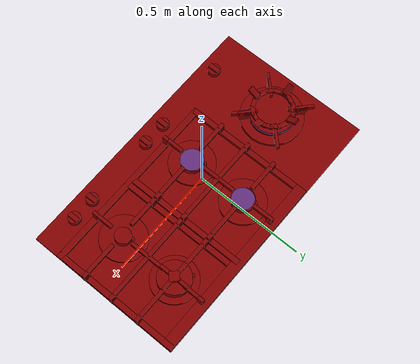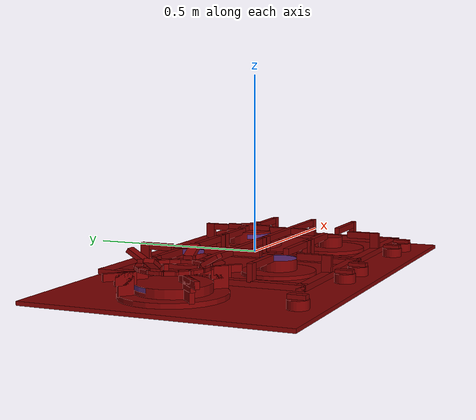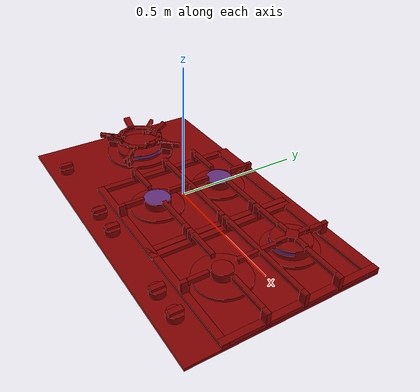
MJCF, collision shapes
<?xml version='1.0' encoding='UTF-8'?>
<mujoco model="model">
  <compiler angle="radian"/>
  <asset>
    <mesh file="visuals/knob_front_center.obj" name="knob_front_center_vis"/>
    <mesh file="visuals/knob_front_left.obj" name="knob_front_left_vis"/>
    <mesh file="visuals/knob_front_right.obj" name="knob_front_right_vis"/>
    <mesh file="visuals/knob_rear_center.obj" name="knob_rear_center_vis"/>
    <mesh file="visuals/knob_rear_right.obj" name="knob_rear_right_vis"/>
    <mesh file="visuals/Body001.obj" name="Body001_vis"/>
    <mesh file="visuals/Body002.obj" name="Body002_vis"/>
    <texture file="visuals/T_BC001.png" name="Body001_material" type="2d"/>
    <material name="Body001_material" rgba="1 1 1 1.0" texture="Body001_material" shininess="0.4472135901451111" specular="3"/>
    <texture file="visuals/T_BC001.png" name="knob_front_center_material" type="2d"/>
    <material name="knob_front_center_material" rgba="1 1 1 1.0" texture="knob_front_center_material" shininess="0.4472135901451111" specular="1"/>
    <texture file="visuals/T_BC001.png" name="knob_front_left_material" type="2d"/>
    <material name="knob_front_left_material" rgba="1 1 1 1.0" texture="knob_front_left_material" shininess="0.4472135901451111" specular="1"/>
    <texture file="visuals/T_BC001.png" name="knob_front_right_material" type="2d"/>
    <material name="knob_front_right_material" rgba="1 1 1 1.0" texture="knob_front_right_material" shininess="0.4472135901451111" specular="1"/>
    <texture file="visuals/T_BC001.png" name="knob_rear_center_material" type="2d"/>
    <material name="knob_rear_center_material" rgba="1 1 1 1.0" texture="knob_rear_center_material" shininess="0.4472135901451111" specular="1"/>
    <texture file="visuals/T_BC001.png" name="knob_rear_right_material" type="2d"/>
    <material name="knob_rear_right_material" rgba="1 1 1 1.0" texture="knob_rear_right_material" shininess="0.4472135901451111" specular="1"/>
    <texture file="visuals/T_BC001.png" name="Body002_material" type="2d"/>
    <material name="Body002_material" rgba="1 1 1 1.0" texture="Body002_material" shininess="0.4472135901451111" specular="8"/>
  </asset>
  <default>
    <default class="visual">
      <geom conaffinity="0" contype="0" group="1" type="mesh"/>
    </default>
    <default class="collision">
      <geom group="0" rgba="0.5 0 0 0.5"/>
    </default>
    <default class="spawn">
      <geom group="0" rgba="1 1 1 0.5" contype="0" conaffinity="0"/>
      <site group="0" rgba="1 1 1 0.5"/>
    </default>
    <default class="region">
      <geom group="1" conaffinity="0" contype="0" rgba="0 1 0 0"/>
    </default>
  </default>
  <worldbody>
    <body>
      <body name="object">
        <site type="cylinder" rgba="0.3 0.4 1 0.5" size="0.07286595553159714 0.006548984907567501" pos="0.3976626992225647 0.18694806098937988 -0.013720323331654072" name="burner_on_rear_right"/>
        <site type="cylinder" rgba="0.3 0.4 1 0.5" size="0.05037660896778107 0.007504538167268038" pos="-0.0423559844493866 0.1877288818359375 -0.013685558922588825" name="burner_on_rear_center"/>
        <site type="cylinder" rgba="0.3 0.4 1 0.5" size="0.09995614737272263 0.00620750617235899" pos="-0.4361136555671692 0.03471238911151886 -0.019563807174563408" name="burner_on_front_left"/>
        <site type="cylinder" rgba="0.3 0.4 1 0.5" size="0.03598540648818016 0.006876813247799873" pos="0.396560937166214 -0.08879250288009644 -0.01334063895046711" name="burner_on_front_right"/>
        <site type="cylinder" rgba="0.3 0.4 1 0.5" size="0.05138256400823593 0.007969224825501442" pos="-0.042687781155109406 -0.0889759212732315 -0.013876210898160934" name="burner_on_front_center"/>
        <geom mesh="Body001_vis" type="mesh" solimp="0.998 0.998 0.001" solref="0.001 1" density="100" friction="0.95 0.3 0.1" class="visual" material="Body001_material"/>
        <geom class="collision" type="box" pos="-0.0010509236017242074 -0.0004410073161125183 -0.05602063611149788" size="0.6303008198738098 0.36655372381210327 0.005506801884621382" quat="1.0 0.0 0.0 0.0"/>
        <body name="knob_front_center">
          <joint axis="0.0 0.0 1.0" pos="-0.09906840324401855 -0.3011915683746338 -0.03230369836091995" limited="true" name="knob_front_center_joint" range="0.0 3.141592653589793" type="hinge" damping="0.05" armature="0.001"/>
          <geom mesh="knob_front_center_vis" type="mesh" solimp="0.998 0.998 0.001" solref="0.001 1" density="100" friction="0.95 0.3 0.1" class="visual" material="knob_front_center_material"/>
          <geom class="collision" type="cylinder" pos="-0.0989885926246643 -0.3011915683746338 -0.03566398099064827" size="0.028106248006224632 0.012377618812024593" quat="1.0 0.0 0.0 0.0"/>
          <geom class="collision" type="box" pos="-0.0987110510468483 -0.30037012696266174 -0.024532392621040344" size="0.010732141323387623 0.024371599778532982 0.010732141323387623" quat="1.0 0.0 0.0 0.0"/>
        </body>
        <body name="knob_front_left">
          <joint axis="0.0 0.0 1.0" pos="-0.4476041793823242 -0.3011915683746338 -0.03230369836091995" limited="true" name="knob_front_left_joint" range="0.0 3.141592653589793" type="hinge" damping="0.05" armature="0.001"/>
          <geom mesh="knob_front_left_vis" type="mesh" solimp="0.998 0.998 0.001" solref="0.001 1" density="100" friction="0.95 0.3 0.1" class="visual" material="knob_front_left_material"/>
          <geom class="collision" type="cylinder" pos="-0.447603702545166 -0.3011915683746338 -0.03754332661628723" size="0.028106248006224632 0.011979950591921806" quat="1.0 0.0 0.0 0.0"/>
          <geom class="collision" type="box" pos="-0.447706401348114 -0.30037012696266174 -0.024532392621040344" size="0.010732141323387623 0.02437158115208149 0.010732141323387623" quat="1.0 0.0 0.0 0.0"/>
        </body>
        <body name="knob_front_right">
          <joint axis="0.0 0.0 1.0" pos="0.4650413393974304 -0.3011915683746338 -0.03230369836091995" limited="true" name="knob_front_right_joint" range="0.0 3.141592653589793" type="hinge" damping="0.05" armature="0.001"/>
          <geom mesh="knob_front_right_vis" type="mesh" solimp="0.998 0.998 0.001" solref="0.001 1" density="100" friction="0.95 0.3 0.1" class="visual" material="knob_front_right_material"/>
          <geom class="collision" type="cylinder" pos="0.46374017000198364 -0.3011915683746338 -0.03566398099064827" size="0.028106248006224632 0.012377618812024593" quat="1.0 0.0 0.0 0.0"/>
          <geom class="collision" type="box" pos="0.4653386175632477 -0.30037012696266174 -0.024532392621040344" size="0.010732141323387623 0.024371657520532608 0.010732141323387623" quat="1.0 0.0 0.0 0.0"/>
        </body>
        <body name="knob_rear_center">
          <joint axis="0.0 0.0 1.0" pos="0.014635343104600906 -0.3011915683746338 -0.03230369836091995" limited="true" name="knob_rear_center_joint" range="0.0 3.141592653589793" type="hinge" damping="0.05" armature="0.001"/>
          <geom mesh="knob_rear_center_vis" type="mesh" solimp="0.998 0.998 0.001" solref="0.001 1" density="100" friction="0.95 0.3 0.1" class="visual" material="knob_rear_center_material"/>
          <geom class="collision" type="cylinder" pos="0.014269128441810608 -0.3011915683746338 -0.03566398099064827" size="0.028106248006224632 0.012377618812024593" quat="1.0 0.0 0.0 0.0"/>
          <geom class="collision" type="box" pos="0.014997273683547974 -0.30037012696266174 -0.024532392621040344" size="0.010732141323387623 0.024371620267629623 0.010732141323387623" quat="1.0 0.0 0.0 0.0"/>
        </body>
        <body name="knob_rear_right">
          <joint axis="0.0 0.0 1.0" pos="0.3535720109939575 -0.3011915683746338 -0.03230369836091995" limited="true" name="knob_rear_right_joint" range="0.0 3.141592653589793" type="hinge" damping="0.05" armature="0.001"/>
          <geom mesh="knob_rear_right_vis" type="mesh" solimp="0.998 0.998 0.001" solref="0.001 1" density="100" friction="0.95 0.3 0.1" class="visual" material="knob_rear_right_material"/>
          <geom class="collision" type="cylinder" pos="0.3542793393135071 -0.3011915683746338 -0.03566398099064827" size="0.028106248006224632 0.012377618812024593" quat="1.0 0.0 0.0 0.0"/>
          <geom class="collision" type="box" pos="0.3540778160095215 -0.30037012696266174 -0.024532392621040344" size="0.010732141323387623 0.024371638894081116 0.010732141323387623" quat="1.0 0.0 0.0 0.0"/>
        </body>
        <body name="Body002">
          <geom mesh="Body002_vis" type="mesh" solimp="0.998 0.998 0.001" solref="0.001 1" density="100" friction="0.95 0.3 0.1" class="visual" material="Body002_material"/>
          <geom class="collision" type="box" pos="0.19031713902950287 -0.23322072625160217 -0.04272088408470154" size="0.4400772750377655 0.013268081471323967 0.008355222642421722" quat="1.0 0.0 0.0 0.0"/>
          <geom class="collision" type="box" pos="-0.23705027997493744 0.05929756537079811 -0.04272088408470154" size="0.01270985696464777 0.3057863712310791 0.008355222642421722" quat="1.0 0.0 0.0 0.0"/>
          <geom class="collision" type="box" pos="0.19031713902950287 0.33987000584602356 -0.04272088408470154" size="0.4400772750377655 0.024021996185183525 0.008355222642421722" quat="1.0 0.0 0.0 0.0"/>
          <geom class="collision" type="box" pos="0.616409182548523 0.05929756909608841 -0.04272088408470154" size="0.01270985696464777 0.3057863712310791 0.008355222642421722" quat="1.0 0.0 0.0 0.0"/>
          <geom class="collision" type="box" pos="0.1769605278968811 0.04854365065693855 -0.04272088408470154" size="0.01270985696464777 0.29503247141838074 0.008355222642421722" quat="1.0 0.0 0.0 0.0"/>
          <geom class="collision" type="box" pos="0.20515483617782593 0.04854365065693855 -0.04272088408470154" size="0.01270985696464777 0.29503247141838074 0.008355222642421722" quat="1.0 0.0 0.0 0.0"/>
          <geom class="collision" type="cylinder" pos="-0.04338785633444786 -0.08959128707647324 -0.04437381774187088" size="0.10432770103216171 0.00552700599655509" quat="1.0 0.0 0.0 0.0"/>
          <geom class="collision" type="cylinder" pos="-0.04253922402858734 -0.08840319514274597 -0.022003553807735443" size="0.05208172649145126 0.015430700965225697" quat="1.0 0.0 0.0 0.0"/>
          <geom class="collision" type="box" pos="-0.06826606392860413 -0.039187077432870865 -0.027044760063290596" size="0.005426999181509018 0.005426998715847731 0.012309755198657513" quat="1.0 0.0 0.0 0.0"/>
          <geom class="collision" type="box" pos="-0.06826606392860413 0.23836781084537506 -0.027044760063290596" size="0.005427008029073477 0.0054270075634121895 0.01230977289378643" quat="1.0 0.0 0.0 0.0"/>
          <geom class="collision" type="cylinder" pos="-0.04253922402858734 0.18915168941020966 -0.022003553807735443" size="0.05208172649145126 0.015430700965225697" quat="1.0 0.0 0.0 0.0"/>
          <geom class="collision" type="cylinder" pos="-0.04338785633444786 0.187963604927063 -0.04437381774187088" size="0.10432770103216171 0.00552700599655509" quat="1.0 0.0 0.0 0.0"/>
          <geom class="collision" type="cylinder" pos="0.3969215750694275 0.187963604927063 -0.04437381774187088" size="0.10432770103216171 0.00552700599655509" quat="1.0 0.0 0.0 0.0"/>
          <geom class="collision" type="cylinder" pos="0.3977702260017395 0.18915167450904846 -0.022003553807735443" size="0.0737522542476654 0.02185121551156044" quat="1.0 0.0 0.0 0.0"/>
          <geom class="collision" type="box" pos="0.33847248554229736 0.23865200579166412 -0.027044760063290596" size="0.005427016876637936 0.005427016410976648 0.012309790588915348" quat="1.0 0.0 0.0 0.0"/>
          <geom class="collision" type="cylinder" pos="0.3967929780483246 -0.08908967673778534 -0.021894652396440506" size="0.036543622612953186 0.016257889568805695" quat="1.0 0.0 0.0 0.0"/>
          <geom class="collision" type="cylinder" pos="0.3969215750694275 -0.08843904733657837 -0.04437381774187088" size="0.10432770103216171 0.00552700599655509" quat="1.0 0.0 0.0 0.0"/>
          <geom class="collision" type="box" pos="0.3788573145866394 -0.051210273057222366 -0.027044760063290596" size="0.0054270257242023945 0.005427025258541107 0.012309808284044266" quat="1.0 0.0 0.0 0.0"/>
          <geom class="collision" type="box" pos="-0.23605410754680634 -0.08986159414052963 -0.012993106618523598" size="0.013706033118069172 0.007810263428837061 0.024774696677923203" quat="1.0 0.0 0.0 0.0"/>
          <geom class="collision" type="box" pos="-0.1612846404314041 -0.08986159414052963 0.0023884030524641275" size="0.061484191566705704 0.007810263428837061 0.009393187239766121" quat="1.0 0.0 0.0 0.0"/>
          <geom class="collision" type="box" pos="-0.0426788330078125 0.05086729675531387 0.002388403285294771" size="0.0078102825209498405 0.08601213991641998 0.009393187239766121" quat="1.0 0.0 0.0 0.0"/>
          <geom class="collision" type="box" pos="-0.23605410754680634 0.05305667966604233 -0.012993106618523598" size="0.013706033118069172 0.007810263428837061 0.024774696677923203" quat="1.0 0.0 0.0 0.0"/>
          <geom class="collision" type="box" pos="-0.23605410754680634 0.18989333510398865 -0.012993106618523598" size="0.013706033118069172 0.007810263428837061 0.024774696677923203" quat="1.0 0.0 0.0 0.0"/>
          <geom class="collision" type="box" pos="-0.15952490270137787 0.18989333510398865 0.0023884030524641275" size="0.06324392557144165 0.007810263428837061 0.009393187239766121" quat="1.0 0.0 0.0 0.0"/>
          <geom class="collision" type="box" pos="-0.028600990772247314 0.05305667966604233 0.002388403285294771" size="0.194167822599411 0.007810263428837061 0.009393187239766121" quat="1.0 0.0 0.0 0.0"/>
          <geom class="collision" type="box" pos="0.08711609244346619 0.18989333510398865 0.0023884030524641275" size="0.07573800534009933 0.007810263428837061 0.009393187239766121" quat="1.0 0.0 0.0 0.0"/>
          <geom class="collision" type="box" pos="0.17613938450813293 0.18989333510398865 -0.012993106618523598" size="0.013706033118069172 0.007810263428837061 0.024774696677923203" quat="1.0 0.0 0.0 0.0"/>
          <geom class="collision" type="box" pos="0.17613938450813293 -0.08961156755685806 -0.012993106618523598" size="0.013706033118069172 0.007810263428837061 0.024774696677923203" quat="1.0 0.0 0.0 0.0"/>
          <geom class="collision" type="box" pos="0.08711609244346619 -0.08961156755685806 0.0023884030524641275" size="0.07573800534009933 0.007810263428837061 0.009393187239766121" quat="1.0 0.0 0.0 0.0"/>
          <geom class="collision" type="box" pos="0.17613938450813293 0.052926622331142426 -0.012993106618523598" size="0.013706033118069172 0.007810263428837061 0.024774696677923203" quat="1.0 0.0 0.0 0.0"/>
          <geom class="collision" type="box" pos="-0.04257605969905853 -0.18351224064826965 0.0023884030524641275" size="0.007810270879417658 0.03859221190214157 0.009393187239766121" quat="1.0 0.0 0.0 0.0"/>
          <geom class="collision" type="box" pos="-0.04273121803998947 -0.23147086799144745 -0.012993106618523598" size="0.007810266222804785 0.013706034980714321 0.024774696677923203" quat="1.0 0.0 0.0 0.0"/>
          <geom class="collision" type="box" pos="-0.04273121803998947 0.3285892903804779 -0.012993106618523598" size="0.007810266222804785 0.013706034980714321 0.024774696677923203" quat="1.0 0.0 0.0 0.0"/>
          <geom class="collision" type="box" pos="-0.04257605969905853 0.2806306779384613 0.0023884030524641275" size="0.007810270879417658 0.03859221190214157 0.009393187239766121" quat="1.0 0.0 0.0 0.0"/>
          <geom class="collision" type="box" pos="0.4009065628051758 0.2806306779384613 0.0023884030524641275" size="0.007810270879417658 0.03859221190214157 0.009393187239766121" quat="1.0 0.0 0.0 0.0"/>
          <geom class="collision" type="box" pos="0.40075138211250305 0.3285892903804779 -0.012993106618523598" size="0.007810266222804785 0.013706034980714321 0.024774696677923203" quat="1.0 0.0 0.0 0.0"/>
          <geom class="collision" type="box" pos="0.40075138211250305 -0.23147086799144745 -0.012993106618523598" size="0.007810266222804785 0.013706034980714321 0.024774696677923203" quat="1.0 0.0 0.0 0.0"/>
          <geom class="collision" type="box" pos="0.4009065628051758 -0.18351224064826965 0.0023884030524641275" size="0.007810270879417658 0.03859221190214157 0.009393187239766121" quat="1.0 0.0 0.0 0.0"/>
          <geom class="collision" type="box" pos="0.619621992111206 0.052926622331142426 -0.012993106618523598" size="0.013706033118069172 0.007810263428837061 0.024774696677923203" quat="1.0 0.0 0.0 0.0"/>
          <geom class="collision" type="box" pos="0.5305987000465393 -0.08961156755685806 0.0023884030524641275" size="0.07573800534009933 0.007810263428837061 0.009393187239766121" quat="1.0 0.0 0.0 0.0"/>
          <geom class="collision" type="box" pos="0.619621992111206 -0.08961156755685806 -0.012993106618523598" size="0.013706033118069172 0.007810263428837061 0.024774696677923203" quat="1.0 0.0 0.0 0.0"/>
          <geom class="collision" type="box" pos="0.619621992111206 0.18989333510398865 -0.012993106618523598" size="0.013706033118069172 0.007810263428837061 0.024774696677923203" quat="1.0 0.0 0.0 0.0"/>
          <geom class="collision" type="box" pos="0.5305987000465393 0.18989333510398865 0.0023884030524641275" size="0.07573800534009933 0.007810263428837061 0.009393187239766121" quat="1.0 0.0 0.0 0.0"/>
          <geom class="collision" type="box" pos="0.4148816168308258 0.05305667966604233 0.002388403285294771" size="0.194167822599411 0.007810263428837061 0.009393187239766121" quat="1.0 0.0 0.0 0.0"/>
          <geom class="collision" type="box" pos="0.28395769000053406 0.18989333510398865 0.0023884030524641275" size="0.06324392557144165 0.007810263428837061 0.009393187239766121" quat="1.0 0.0 0.0 0.0"/>
          <geom class="collision" type="box" pos="0.20742850005626678 0.18989333510398865 -0.012993106618523598" size="0.013706033118069172 0.007810263428837061 0.024774696677923203" quat="1.0 0.0 0.0 0.0"/>
          <geom class="collision" type="box" pos="0.20742850005626678 0.05305667966604233 -0.012993106618523598" size="0.013706033118069172 0.007810263428837061 0.024774696677923203" quat="1.0 0.0 0.0 0.0"/>
          <geom class="collision" type="box" pos="0.4008037745952606 0.05086729675531387 0.002388403285294771" size="0.0078102825209498405 0.08601213991641998 0.009393187239766121" quat="1.0 0.0 0.0 0.0"/>
          <geom class="collision" type="box" pos="0.2821979522705078 -0.08986159414052963 0.0023884030524641275" size="0.061484191566705704 0.007810263428837061 0.009393187239766121" quat="1.0 0.0 0.0 0.0"/>
          <geom class="collision" type="box" pos="0.20742850005626678 -0.08986159414052963 -0.012993106618523598" size="0.013706033118069172 0.007810263428837061 0.024774696677923203" quat="1.0 0.0 0.0 0.0"/>
          <geom class="collision" type="box" pos="0.3984936773777008 0.18940791487693787 0.008470630273222923" size="0.021225016564130783 0.02158193103969097 0.009393187239766121" quat="0.9252730011940002 0.0 0.0 0.37930184602737427"/>
          <geom class="collision" type="box" pos="0.3984360098838806 0.18989333510398865 0.006241433322429657" size="0.07198488712310791 0.007810263428837061 0.009393187239766121" quat="1.0 0.0 0.0 0.0"/>
          <geom class="collision" type="box" pos="0.3984360098838806 0.18989333510398865 0.006241433322429657" size="0.007841657847166061 0.07198827713727951 0.009393187239766121" quat="1.0 0.0 0.0 0.0"/>
          <geom class="collision" type="cylinder" pos="-0.43706589937210083 0.034202367067337036 -0.04437382146716118" size="0.1417691558599472 0.007510555442422628" quat="1.0 0.0 0.0 0.0"/>
          <geom class="collision" type="cylinder" pos="-0.43685078620910645 0.033560317009687424 -0.03190205246210098" size="0.09960156679153442 0.019611313939094543" quat="1.0 0.0 0.0 0.0"/>
          <geom class="collision" type="box" pos="-0.4368622303009033 -0.05217701941728592 0.025454793125391006" size="0.023361733183264732 0.009217897430062294 0.0049835131503641605" quat="1.0 0.0 0.0 0.0"/>
          <geom class="collision" type="box" pos="-0.3744599223136902 -0.02524673193693161 0.025454793125391006" size="0.023361949250102043 0.009218004532158375 0.004983567167073488" quat="0.918096125125885 0.0 0.0 0.39635783433914185"/>
          <geom class="collision" type="box" pos="-0.3512263298034668 0.037957657128572464 0.025454793125391006" size="0.023361949250102043 0.009218004532158375 0.004983567167073488" quat="0.6886866688728333 0.0 0.0 0.7250590920448303"/>
          <geom class="collision" type="box" pos="-0.37670162320137024 0.09465833753347397 0.025454793125391006" size="0.023361949250102043 0.009218004532158375 0.004983567167073488" quat="0.3790040910243988 0.0 0.0 0.9253950119018555"/>
          <geom class="collision" type="box" pos="-0.4380412995815277 0.11928940564393997 0.025454793125391006" size="0.02348848432302475 0.009544494561851025 0.004983518272638321" quat="1.0 0.0 0.0 0.0"/>
          <geom class="collision" type="box" pos="-0.49446970224380493 0.09705013781785965 0.025454793125391006" size="0.023361949250102043 0.009218004532158375 0.004983567167073488" quat="0.3602597415447235 0.0 -0.0 -0.932852029800415"/>
          <geom class="collision" type="box" pos="-0.5225727558135986 0.035185277462005615 0.025454793125391006" size="0.023361949250102043 0.009218004532158375 0.004983567167073488" quat="0.7004214525222778 0.0 -0.0 -0.7137295007705688"/>
          <geom class="collision" type="box" pos="-0.4989605247974396 -0.025543607771396637 0.025454793125391006" size="0.023361949250102043 0.009218004532158375 0.004983567167073488" quat="0.9190910458564758 0.0 -0.0 -0.39404526352882385"/>
          <geom class="collision" type="box" pos="-0.47276923060417175 -0.044290557503700256 0.025454793125391006" size="0.023361949250102043 0.009218004532158375 0.004983567167073488" quat="0.9767475724220276 0.0 -0.0 -0.2143925279378891"/>
          <geom class="collision" type="box" pos="-0.5171234011650085 0.003440454602241516 0.025454793125391006" size="0.023361949250102043 0.009218004532158375 0.004983567167073488" quat="0.8220183849334717 0.0 -0.0 -0.569460928440094"/>
          <geom class="collision" type="box" pos="-0.5138306617736816 0.07130943238735199 0.025454793125391006" size="0.023361949250102043 0.009218004532158375 0.004983567167073488" quat="0.5290707349777222 0.0 -0.0 -0.8485777378082275"/>
          <geom class="collision" type="box" pos="-0.46959009766578674 0.11280068010091782 0.025454793125391006" size="0.023361949250102043 0.009218004532158375 0.004983567167073488" quat="0.1947162002325058 0.0 -0.0 -0.980859637260437"/>
          <geom class="collision" type="box" pos="-0.4034903347492218 0.11254114657640457 0.025454793125391006" size="0.023361949250102043 0.009218004532158375 0.004983567167073488" quat="0.19843530654907227 0.0 0.0 0.9801139831542969"/>
          <geom class="collision" type="box" pos="-0.35889095067977905 0.06924156844615936 0.025454793125391006" size="0.023361949250102043 0.009218004532158375 0.004983567167073488" quat="0.5402359962463379 0.0 0.0 0.8415135741233826"/>
          <geom class="collision" type="box" pos="-0.35716357827186584 0.001924322685226798 0.025454793125391006" size="0.023361947387456894 0.009218004532158375 0.004983567167073488" quat="0.8273038864135742 0.0 0.0 0.5617546439170837"/>
          <geom class="collision" type="box" pos="-0.40522557497024536 -0.04613117873668671 0.025454793125391006" size="0.023361949250102043 0.009218004532158375 0.004983567167073488" quat="0.9822003841400146 0.0 0.0 0.18783622980117798"/>
          <geom class="collision" type="box" pos="-0.4367956519126892 -0.05413161590695381 0.03541545197367668" size="0.013774670660495758 0.007270990405231714 0.005643520504236221" quat="1.0 0.0 0.0 0.0"/>
          <geom class="collision" type="box" pos="-0.4367956519126892 -0.07073476165533066 0.04846574738621712" size="0.013774818740785122 0.024361666291952133 0.0056435950100421906" quat="0.9635663628578186 -0.2674693465232849 -5.93901253783191e-17 1.8106576446118155e-25"/>
          <geom class="collision" type="box" pos="-0.5411456227302551 0.033811889588832855 0.04846574738621712" size="0.013774817809462547 0.024361664429306984 0.005643594544380903" quat="0.6803417801856995 -0.18885108828544617 0.18940725922584534 -0.6823453903198242"/>
          <geom class="collision" type="box" pos="-0.524542510509491 0.033763062208890915 0.03541545197367668" size="0.007311476860195398 0.013796011917293072 0.00564352935180068" quat="1.0 0.0 0.0 0.0"/>
          <geom class="collision" type="box" pos="-0.436214417219162 0.12124995142221451 0.03541545197367668" size="0.013831616379320621 0.007379406131803989 0.005643538199365139" quat="1.0 0.0 0.0 0.0"/>
          <geom class="collision" type="box" pos="-0.43608349561691284 0.13785260915756226 0.04846573993563652" size="0.013774817809462547 0.024361664429306984 0.005643594544380903" quat="0.0037992580328136683 -0.0010546081466600299 -0.2674672305583954 0.9635589122772217"/>
          <geom class="collision" type="box" pos="-0.3325560688972473 0.03385277837514877 0.04846573993563652" size="0.013774820603430271 0.024361664429306984 0.005643594544380903" quat="0.6805686950683594 -0.18891406059265137 -0.18934442102909088 0.6821190714836121"/>
          <geom class="collision" type="box" pos="-0.34915921092033386 0.03381500020623207 0.03541545197367668" size="0.007302343845367432 0.013791235163807869 0.005643547046929598" quat="1.0 0.0 0.0 0.0"/>
          <geom class="collision" type="box" pos="-0.5244250297546387 -0.05307864397764206 -0.009665553458034992" size="0.020645955577492714 0.006466416176408529 0.03021213412284851" quat="0.9213609099388123 0.0 0.0 0.3887082040309906"/>
          <geom class="collision" type="box" pos="-0.5246523022651672 -0.05331194028258324 0.011140521615743637" size="0.056873954832553864 0.006466416642069817 0.009599260985851288" quat="0.9213609099388123 0.0 0.0 0.3887082040309906"/>
          <geom class="collision" type="box" pos="-0.5247303247451782 -0.05339200794696808 0.0046141501516103745" size="0.027491183951497078 0.006466416642069817 0.0161256305873394" quat="0.9213609099388123 0.0 0.0 0.3887082040309906"/>
          <geom class="collision" type="box" pos="-0.5242099165916443 0.12103553861379623 0.0046141501516103745" size="0.027491183951497078 0.006466416642069817 0.0161256305873394" quat="0.9272298216819763 0.0 -0.0 -0.3744927942752838"/>
          <geom class="collision" type="box" pos="-0.5241295099258423 0.12095789611339569 0.011140521615743637" size="0.056873954832553864 0.006466416642069817 0.009599260985851288" quat="0.9272298216819763 0.0 -0.0 -0.3744927942752838"/>
          <geom class="collision" type="box" pos="-0.5238951444625854 0.12073170393705368 -0.009665553458034992" size="0.020645955577492714 0.006466416176408529 0.03021213412284851" quat="0.9272298216819763 0.0 -0.0 -0.3744927942752838"/>
          <geom class="collision" type="box" pos="-0.349442720413208 0.12036681175231934 -0.009665553458034992" size="0.020645955577492714 0.006466416176408529 0.03021213412284851" quat="0.3895901143550873 0.0 -0.0 -0.9209883809089661"/>
          <geom class="collision" type="box" pos="-0.34921586513519287 0.12060053646564484 0.011140521615743637" size="0.056873954832553864 0.006466416642069817 0.009599260985851288" quat="0.3895901143550873 0.0 -0.0 -0.9209883809089661"/>
          <geom class="collision" type="box" pos="-0.3491380214691162 0.12068076431751251 0.0046141501516103745" size="0.027491183951497078 0.006466416642069817 0.0161256305873394" quat="0.3895901143550873 0.0 -0.0 -0.9209883809089661"/>
          <geom class="collision" type="box" pos="-0.3491653800010681 -0.05358770117163658 0.0046141501516103745" size="0.027491183951497078 0.006466416642069817 0.0161256305873394" quat="0.3727588355541229 0.0 0.0 0.9279282689094543"/>
          <geom class="collision" type="box" pos="-0.349246084690094 -0.05351036787033081 0.011140521615743637" size="0.056873954832553864 0.006466416642069817 0.009599260985851288" quat="0.3727588355541229 0.0 0.0 0.9279282689094543"/>
          <geom class="collision" type="box" pos="-0.3494812846183777 -0.05328505486249924 -0.009665553458034992" size="0.020645955577492714 0.006466416176408529 0.03021213412284851" quat="0.3727588355541229 0.0 0.0 0.9279282689094543"/>
        </body>
        <geom class="region" name="reg_main" type="box" pos="5.21540641784668e-07 -0.0003418922424316406 -0.05558149889111519" size="0.629748523235321 0.36619889736175537 0.0054475124925374985"/>
      </body>
    </body>
  </worldbody>
  <actuator>
    <motor name="knob_front_center_joint_actuator" joint="knob_front_center_joint" gear="10"/>
    <motor name="knob_front_left_joint_actuator" joint="knob_front_left_joint" gear="10"/>
    <motor name="knob_front_right_joint_actuator" joint="knob_front_right_joint" gear="10"/>
    <motor name="knob_rear_center_joint_actuator" joint="knob_rear_center_joint" gear="10"/>
    <motor name="knob_rear_right_joint_actuator" joint="knob_rear_right_joint" gear="10"/>
  </actuator>
</mujoco>
